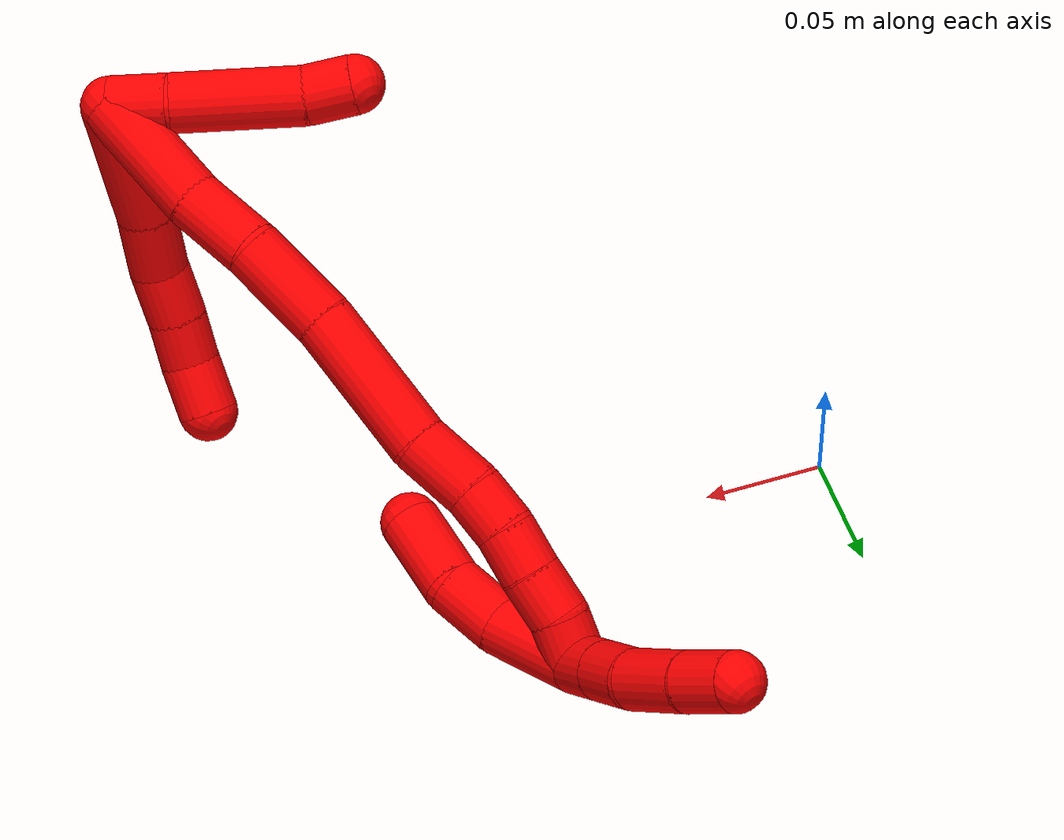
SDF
<sdf version="1.7">
 <world name="default">
  <model name="2">
   <static>0</static>
   <link name="2">
    <collision name="collision-cylinder-e_1_2_8">
     <pose>-0.016598 -0.020824 -0.007949 1.93544 -0.640064 -0.897084</pose>
     <geometry><cylinder><radius>0.0125</radius><length>0.05558</length></cylinder></geometry>
     <surface>
      <friction><ode><mu>1.16</mu><mu2>1.16</mu2><slip1>0</slip1><slip2>0</slip2></ode></friction>
      <contact><ode><kp>1e+06</kp><kd>1</kd><max_vel>0</max_vel><min_depth>0.001</min_depth></ode></contact>
     </surface>
    </collision>
    <visual name="visual-cylinder-e_1_2_8">
     <pose>-0.016598 -0.020824 -0.007949 1.93544 -0.640064 -0.897084</pose>
     <geometry><cylinder><radius>0.0125</radius><length>0.05558</length></cylinder></geometry>
     <material><ambient>1 0 0 1</ambient></material>
    </visual>
    <collision name="collision-cylinder-e_2_8_9">
     <pose>-0.040578 -0.052687 -0.019815 1.9118 -0.562389 -0.776484</pose>
     <geometry><cylinder><radius>0.0125</radius><length>0.027694</length></cylinder></geometry>
     <surface>
      <friction><ode><mu>1.16</mu><mu2>1.16</mu2><slip1>0</slip1><slip2>0</slip2></ode></friction>
      <contact><ode><kp>1e+06</kp><kd>1</kd><max_vel>0</max_vel><min_depth>0.001</min_depth></ode></contact>
     </surface>
    </collision>
    <visual name="visual-cylinder-e_2_8_9">
     <pose>-0.040578 -0.052687 -0.019815 1.9118 -0.562389 -0.776484</pose>
     <geometry><cylinder><radius>0.0125</radius><length>0.027694</length></cylinder></geometry>
     <material><ambient>1 0 0 1</ambient></material>
    </visual>
    <collision name="collision-cylinder-e_3_9_10">
     <pose>-0.053787 -0.071978 -0.029611 2.18982 -0.521852 -0.956009</pose>
     <geometry><cylinder><radius>0.0125</radius><length>0.023373</length></cylinder></geometry>
     <surface>
      <friction><ode><mu>1.16</mu><mu2>1.16</mu2><slip1>0</slip1><slip2>0</slip2></ode></friction>
      <contact><ode><kp>1e+06</kp><kd>1</kd><max_vel>0</max_vel><min_depth>0.001</min_depth></ode></contact>
     </surface>
    </collision>
    <visual name="visual-cylinder-e_3_9_10">
     <pose>-0.053787 -0.071978 -0.029611 2.18982 -0.521852 -0.956009</pose>
     <geometry><cylinder><radius>0.0125</radius><length>0.023373</length></cylinder></geometry>
     <material><ambient>1 0 0 1</ambient></material>
    </visual>
    <collision name="collision-cylinder-e_4_10_11">
     <pose>-0.064133 -0.087835 -0.040746 2.17555 -0.454776 -0.831022</pose>
     <geometry><cylinder><radius>0.0125</radius><length>0.020583</length></cylinder></geometry>
     <surface>
      <friction><ode><mu>1.16</mu><mu2>1.16</mu2><slip1>0</slip1><slip2>0</slip2></ode></friction>
      <contact><ode><kp>1e+06</kp><kd>1</kd><max_vel>0</max_vel><min_depth>0.001</min_depth></ode></contact>
     </surface>
    </collision>
    <visual name="visual-cylinder-e_4_10_11">
     <pose>-0.064133 -0.087835 -0.040746 2.17555 -0.454776 -0.831022</pose>
     <geometry><cylinder><radius>0.0125</radius><length>0.020583</length></cylinder></geometry>
     <material><ambient>1 0 0 1</ambient></material>
    </visual>
    <collision name="collision-cylinder-e_5_11_6">
     <pose>-0.072025 -0.102391 -0.054366 2.4482 -0.300578 -0.793798</pose>
     <geometry><cylinder><radius>0.0125</radius><length>0.022771</length></cylinder></geometry>
     <surface>
      <friction><ode><mu>1.16</mu><mu2>1.16</mu2><slip1>0</slip1><slip2>0</slip2></ode></friction>
      <contact><ode><kp>1e+06</kp><kd>1</kd><max_vel>0</max_vel><min_depth>0.001</min_depth></ode></contact>
     </surface>
    </collision>
    <visual name="visual-cylinder-e_5_11_6">
     <pose>-0.072025 -0.102391 -0.054366 2.4482 -0.300578 -0.793798</pose>
     <geometry><cylinder><radius>0.0125</radius><length>0.022771</length></cylinder></geometry>
     <material><ambient>1 0 0 1</ambient></material>
    </visual>
    <collision name="collision-cylinder-e_1_2_12">
     <pose>-0.006766 0.006841 -0.007532 -2.40423 -0.586861 1.32743</pose>
     <geometry><cylinder><radius>0.0125</radius><length>0.024438</length></cylinder></geometry>
     <surface>
      <friction><ode><mu>1.16</mu><mu2>1.16</mu2><slip1>0</slip1><slip2>0</slip2></ode></friction>
      <contact><ode><kp>1e+06</kp><kd>1</kd><max_vel>0</max_vel><min_depth>0.001</min_depth></ode></contact>
     </surface>
    </collision>
    <visual name="visual-cylinder-e_1_2_12">
     <pose>-0.006766 0.006841 -0.007532 -2.40423 -0.586861 1.32743</pose>
     <geometry><cylinder><radius>0.0125</radius><length>0.024438</length></cylinder></geometry>
     <material><ambient>1 0 0 1</ambient></material>
    </visual>
    <collision name="collision-cylinder-e_2_12_13">
     <pose>-0.032136 0.027722 -0.029718 -2.37758 -0.741924 1.5385</pose>
     <geometry><cylinder><radius>0.0125</radius><length>0.055062</length></cylinder></geometry>
     <surface>
      <friction><ode><mu>1.16</mu><mu2>1.16</mu2><slip1>0</slip1><slip2>0</slip2></ode></friction>
      <contact><ode><kp>1e+06</kp><kd>1</kd><max_vel>0</max_vel><min_depth>0.001</min_depth></ode></contact>
     </surface>
    </collision>
    <visual name="visual-cylinder-e_2_12_13">
     <pose>-0.032136 0.027722 -0.029718 -2.37758 -0.741924 1.5385</pose>
     <geometry><cylinder><radius>0.0125</radius><length>0.055062</length></cylinder></geometry>
     <material><ambient>1 0 0 1</ambient></material>
    </visual>
    <collision name="collision-cylinder-e_3_13_5">
     <pose>-0.056592 0.04863 -0.049234 -2.18681 -0.607873 1.09012</pose>
     <geometry><cylinder><radius>0.0125</radius><length>0.0205</length></cylinder></geometry>
     <surface>
      <friction><ode><mu>1.16</mu><mu2>1.16</mu2><slip1>0</slip1><slip2>0</slip2></ode></friction>
      <contact><ode><kp>1e+06</kp><kd>1</kd><max_vel>0</max_vel><min_depth>0.001</min_depth></ode></contact>
     </surface>
    </collision>
    <visual name="visual-cylinder-e_3_13_5">
     <pose>-0.056592 0.04863 -0.049234 -2.18681 -0.607873 1.09012</pose>
     <geometry><cylinder><radius>0.0125</radius><length>0.0205</length></cylinder></geometry>
     <material><ambient>1 0 0 1</ambient></material>
    </visual>
    <collision name="collision-cylinder-e_1_2_14">
     <pose>-0.006819 -0.003903 -0.02548 2.98958 -0.258611 -2.082</pose>
     <geometry><cylinder><radius>0.0125</radius><length>0.053327</length></cylinder></geometry>
     <surface>
      <friction><ode><mu>1.16</mu><mu2>1.16</mu2><slip1>0</slip1><slip2>0</slip2></ode></friction>
      <contact><ode><kp>1e+06</kp><kd>1</kd><max_vel>0</max_vel><min_depth>0.001</min_depth></ode></contact>
     </surface>
    </collision>
    <visual name="visual-cylinder-e_1_2_14">
     <pose>-0.006819 -0.003903 -0.02548 2.98958 -0.258611 -2.082</pose>
     <geometry><cylinder><radius>0.0125</radius><length>0.053327</length></cylinder></geometry>
     <material><ambient>1 0 0 1</ambient></material>
    </visual>
    <collision name="collision-cylinder-e_2_14_15">
     <pose>-0.017637 -0.007505 -0.067026 -3.1228 -0.243923 2.98859</pose>
     <geometry><cylinder><radius>0.0125</radius><length>0.033119</length></cylinder></geometry>
     <surface>
      <friction><ode><mu>1.16</mu><mu2>1.16</mu2><slip1>0</slip1><slip2>0</slip2></ode></friction>
      <contact><ode><kp>1e+06</kp><kd>1</kd><max_vel>0</max_vel><min_depth>0.001</min_depth></ode></contact>
     </surface>
    </collision>
    <visual name="visual-cylinder-e_2_14_15">
     <pose>-0.017637 -0.007505 -0.067026 -3.1228 -0.243923 2.98859</pose>
     <geometry><cylinder><radius>0.0125</radius><length>0.033119</length></cylinder></geometry>
     <material><ambient>1 0 0 1</ambient></material>
    </visual>
    <collision name="collision-cylinder-e_3_15_16">
     <pose>-0.029123 -0.010188 -0.102114 2.98594 -0.370818 -2.35354</pose>
     <geometry><cylinder><radius>0.0125</radius><length>0.041317</length></cylinder></geometry>
     <surface>
      <friction><ode><mu>1.16</mu><mu2>1.16</mu2><slip1>0</slip1><slip2>0</slip2></ode></friction>
      <contact><ode><kp>1e+06</kp><kd>1</kd><max_vel>0</max_vel><min_depth>0.001</min_depth></ode></contact>
     </surface>
    </collision>
    <visual name="visual-cylinder-e_3_15_16">
     <pose>-0.029123 -0.010188 -0.102114 2.98594 -0.370818 -2.35354</pose>
     <geometry><cylinder><radius>0.0125</radius><length>0.041317</length></cylinder></geometry>
     <material><ambient>1 0 0 1</ambient></material>
    </visual>
    <collision name="collision-cylinder-e_4_16_17">
     <pose>-0.045355 -0.020583 -0.150095 2.89109 -0.284642 -1.69973</pose>
     <geometry><cylinder><radius>0.0125</radius><length>0.062291</length></cylinder></geometry>
     <surface>
      <friction><ode><mu>1.16</mu><mu2>1.16</mu2><slip1>0</slip1><slip2>0</slip2></ode></friction>
      <contact><ode><kp>1e+06</kp><kd>1</kd><max_vel>0</max_vel><min_depth>0.001</min_depth></ode></contact>
     </surface>
    </collision>
    <visual name="visual-cylinder-e_4_16_17">
     <pose>-0.045355 -0.020583 -0.150095 2.89109 -0.284642 -1.69973</pose>
     <geometry><cylinder><radius>0.0125</radius><length>0.062291</length></cylinder></geometry>
     <material><ambient>1 0 0 1</ambient></material>
    </visual>
    <collision name="collision-cylinder-e_5_17_18">
     <pose>-0.059971 -0.029362 -0.192232 3.03809 -0.417099 -2.66151</pose>
     <geometry><cylinder><radius>0.0125</radius><length>0.028982</length></cylinder></geometry>
     <surface>
      <friction><ode><mu>1.16</mu><mu2>1.16</mu2><slip1>0</slip1><slip2>0</slip2></ode></friction>
      <contact><ode><kp>1e+06</kp><kd>1</kd><max_vel>0</max_vel><min_depth>0.001</min_depth></ode></contact>
     </surface>
    </collision>
    <visual name="visual-cylinder-e_5_17_18">
     <pose>-0.059971 -0.029362 -0.192232 3.03809 -0.417099 -2.66151</pose>
     <geometry><cylinder><radius>0.0125</radius><length>0.028982</length></cylinder></geometry>
     <material><ambient>1 0 0 1</ambient></material>
    </visual>
    <collision name="collision-cylinder-e_6_18_19">
     <pose>-0.069227 -0.033267 -0.214527 2.87027 -0.343561 -1.80833</pose>
     <geometry><cylinder><radius>0.0125</radius><length>0.020102</length></cylinder></geometry>
     <surface>
      <friction><ode><mu>1.16</mu><mu2>1.16</mu2><slip1>0</slip1><slip2>0</slip2></ode></friction>
      <contact><ode><kp>1e+06</kp><kd>1</kd><max_vel>0</max_vel><min_depth>0.001</min_depth></ode></contact>
     </surface>
    </collision>
    <visual name="visual-cylinder-e_6_18_19">
     <pose>-0.069227 -0.033267 -0.214527 2.87027 -0.343561 -1.80833</pose>
     <geometry><cylinder><radius>0.0125</radius><length>0.020102</length></cylinder></geometry>
     <material><ambient>1 0 0 1</ambient></material>
    </visual>
    <collision name="collision-cylinder-e_7_19_20">
     <pose>-0.075813 -0.04002 -0.23219 2.68323 -0.323994 -1.22222</pose>
     <geometry><cylinder><radius>0.0125</radius><length>0.020105</length></cylinder></geometry>
     <surface>
      <friction><ode><mu>1.16</mu><mu2>1.16</mu2><slip1>0</slip1><slip2>0</slip2></ode></friction>
      <contact><ode><kp>1e+06</kp><kd>1</kd><max_vel>0</max_vel><min_depth>0.001</min_depth></ode></contact>
     </surface>
    </collision>
    <visual name="visual-cylinder-e_7_19_20">
     <pose>-0.075813 -0.04002 -0.23219 2.68323 -0.323994 -1.22222</pose>
     <geometry><cylinder><radius>0.0125</radius><length>0.020105</length></cylinder></geometry>
     <material><ambient>1 0 0 1</ambient></material>
    </visual>
    <collision name="collision-cylinder-e_8_20_21">
     <pose>-0.082991 -0.048243 -0.2492 2.69945 -0.401639 -1.47196</pose>
     <geometry><cylinder><radius>0.0125</radius><length>0.020349</length></cylinder></geometry>
     <surface>
      <friction><ode><mu>1.16</mu><mu2>1.16</mu2><slip1>0</slip1><slip2>0</slip2></ode></friction>
      <contact><ode><kp>1e+06</kp><kd>1</kd><max_vel>0</max_vel><min_depth>0.001</min_depth></ode></contact>
     </surface>
    </collision>
    <visual name="visual-cylinder-e_8_20_21">
     <pose>-0.082991 -0.048243 -0.2492 2.69945 -0.401639 -1.47196</pose>
     <geometry><cylinder><radius>0.0125</radius><length>0.020349</length></cylinder></geometry>
     <material><ambient>1 0 0 1</ambient></material>
    </visual>
    <collision name="collision-cylinder-e_9_21_1">
     <pose>-0.09068 -0.058538 -0.264793 2.41877 -0.372258 -0.924336</pose>
     <geometry><cylinder><radius>0.0125</radius><length>0.020407</length></cylinder></geometry>
     <surface>
      <friction><ode><mu>1.16</mu><mu2>1.16</mu2><slip1>0</slip1><slip2>0</slip2></ode></friction>
      <contact><ode><kp>1e+06</kp><kd>1</kd><max_vel>0</max_vel><min_depth>0.001</min_depth></ode></contact>
     </surface>
    </collision>
    <visual name="visual-cylinder-e_9_21_1">
     <pose>-0.09068 -0.058538 -0.264793 2.41877 -0.372258 -0.924336</pose>
     <geometry><cylinder><radius>0.0125</radius><length>0.020407</length></cylinder></geometry>
     <material><ambient>1 0 0 1</ambient></material>
    </visual>
    <collision name="collision-cylinder-e_1_1_22">
     <pose>-0.091044 -0.059081 -0.280469 -2.54991 0.314242 -0.958726</pose>
     <geometry><cylinder><radius>0.0125</radius><length>0.021657</length></cylinder></geometry>
     <surface>
      <friction><ode><mu>1.16</mu><mu2>1.16</mu2><slip1>0</slip1><slip2>0</slip2></ode></friction>
      <contact><ode><kp>1e+06</kp><kd>1</kd><max_vel>0</max_vel><min_depth>0.001</min_depth></ode></contact>
     </surface>
    </collision>
    <visual name="visual-cylinder-e_1_1_22">
     <pose>-0.091044 -0.059081 -0.280469 -2.54991 0.314242 -0.958726</pose>
     <geometry><cylinder><radius>0.0125</radius><length>0.021657</length></cylinder></geometry>
     <material><ambient>1 0 0 1</ambient></material>
    </visual>
    <collision name="collision-cylinder-e_2_22_23">
     <pose>-0.084057 -0.047164 -0.29817 -2.54822 0.318438 -0.96731</pose>
     <geometry><cylinder><radius>0.0125</radius><length>0.023253</length></cylinder></geometry>
     <surface>
      <friction><ode><mu>1.16</mu><mu2>1.16</mu2><slip1>0</slip1><slip2>0</slip2></ode></friction>
      <contact><ode><kp>1e+06</kp><kd>1</kd><max_vel>0</max_vel><min_depth>0.001</min_depth></ode></contact>
     </surface>
    </collision>
    <visual name="visual-cylinder-e_2_22_23">
     <pose>-0.084057 -0.047164 -0.29817 -2.54822 0.318438 -0.96731</pose>
     <geometry><cylinder><radius>0.0125</radius><length>0.023253</length></cylinder></geometry>
     <material><ambient>1 0 0 1</ambient></material>
    </visual>
    <collision name="collision-cylinder-e_3_23_24">
     <pose>-0.07868 -0.031102 -0.319022 -2.43982 0.112928 -0.306425</pose>
     <geometry><cylinder><radius>0.0125</radius><length>0.030829</length></cylinder></geometry>
     <surface>
      <friction><ode><mu>1.16</mu><mu2>1.16</mu2><slip1>0</slip1><slip2>0</slip2></ode></friction>
      <contact><ode><kp>1e+06</kp><kd>1</kd><max_vel>0</max_vel><min_depth>0.001</min_depth></ode></contact>
     </surface>
    </collision>
    <visual name="visual-cylinder-e_3_23_24">
     <pose>-0.07868 -0.031102 -0.319022 -2.43982 0.112928 -0.306425</pose>
     <geometry><cylinder><radius>0.0125</radius><length>0.030829</length></cylinder></geometry>
     <material><ambient>1 0 0 1</ambient></material>
    </visual>
    <collision name="collision-cylinder-e_4_24_4">
     <pose>-0.076606 -0.01307 -0.339703 -2.40519 0.027783 -0.071989</pose>
     <geometry><cylinder><radius>0.0125</radius><length>0.024262</length></cylinder></geometry>
     <surface>
      <friction><ode><mu>1.16</mu><mu2>1.16</mu2><slip1>0</slip1><slip2>0</slip2></ode></friction>
      <contact><ode><kp>1e+06</kp><kd>1</kd><max_vel>0</max_vel><min_depth>0.001</min_depth></ode></contact>
     </surface>
    </collision>
    <visual name="visual-cylinder-e_4_24_4">
     <pose>-0.076606 -0.01307 -0.339703 -2.40519 0.027783 -0.071989</pose>
     <geometry><cylinder><radius>0.0125</radius><length>0.024262</length></cylinder></geometry>
     <material><ambient>1 0 0 1</ambient></material>
    </visual>
    <collision name="collision-cylinder-e_1_1_25">
     <pose>-0.09209 -0.071155 -0.253216 0.326318 0.116015 0.01912</pose>
     <geometry><cylinder><radius>0.0125</radius><length>0.039761</length></cylinder></geometry>
     <surface>
      <friction><ode><mu>1.16</mu><mu2>1.16</mu2><slip1>0</slip1><slip2>0</slip2></ode></friction>
      <contact><ode><kp>1e+06</kp><kd>1</kd><max_vel>0</max_vel><min_depth>0.001</min_depth></ode></contact>
     </surface>
    </collision>
    <visual name="visual-cylinder-e_1_1_25">
     <pose>-0.09209 -0.071155 -0.253216 0.326318 0.116015 0.01912</pose>
     <geometry><cylinder><radius>0.0125</radius><length>0.039761</length></cylinder></geometry>
     <material><ambient>1 0 0 1</ambient></material>
    </visual>
    <collision name="collision-cylinder-e_2_25_26">
     <pose>-0.086267 -0.077643 -0.221828 0.012453 0.270825 0.001697</pose>
     <geometry><cylinder><radius>0.0125</radius><length>0.026329</length></cylinder></geometry>
     <surface>
      <friction><ode><mu>1.16</mu><mu2>1.16</mu2><slip1>0</slip1><slip2>0</slip2></ode></friction>
      <contact><ode><kp>1e+06</kp><kd>1</kd><max_vel>0</max_vel><min_depth>0.001</min_depth></ode></contact>
     </surface>
    </collision>
    <visual name="visual-cylinder-e_2_25_26">
     <pose>-0.086267 -0.077643 -0.221828 0.012453 0.270825 0.001697</pose>
     <geometry><cylinder><radius>0.0125</radius><length>0.026329</length></cylinder></geometry>
     <material><ambient>1 0 0 1</ambient></material>
    </visual>
    <collision name="collision-cylinder-e_3_26_3">
     <pose>-0.082997 -0.075914 -0.192297 -0.111539 -0.014889 0.000831</pose>
     <geometry><cylinder><radius>0.0125</radius><length>0.03391</length></cylinder></geometry>
     <surface>
      <friction><ode><mu>1.16</mu><mu2>1.16</mu2><slip1>0</slip1><slip2>0</slip2></ode></friction>
      <contact><ode><kp>1e+06</kp><kd>1</kd><max_vel>0</max_vel><min_depth>0.001</min_depth></ode></contact>
     </surface>
    </collision>
    <visual name="visual-cylinder-e_3_26_3">
     <pose>-0.082997 -0.075914 -0.192297 -0.111539 -0.014889 0.000831</pose>
     <geometry><cylinder><radius>0.0125</radius><length>0.03391</length></cylinder></geometry>
     <material><ambient>1 0 0 1</ambient></material>
    </visual>
    <collision name="collision-sphere-3">
     <pose>-0.08325 -0.074027 -0.175449 0 -0 0</pose>
     <geometry><sphere><radius>0.0125</radius></sphere></geometry>
     <surface>
      <friction><ode><mu>1.16</mu><mu2>1.16</mu2><slip1>0</slip1><slip2>0</slip2></ode></friction>
      <contact><ode><kp>1e+06</kp><kd>1</kd><max_vel>0</max_vel><min_depth>0.001</min_depth></ode></contact>
     </surface>
    </collision>
    <visual name="visual-sphere-3">
     <pose>-0.08325 -0.074027 -0.175449 0 -0 0</pose>
     <geometry><sphere><radius>0.0125</radius></sphere></geometry>
     <material><ambient>1 0 0 1</ambient></material>
    </visual>
    <collision name="collision-sphere-26">
     <pose>-0.082745 -0.077801 -0.209145 0 -0 0</pose>
     <geometry><sphere><radius>0.0125</radius></sphere></geometry>
     <surface>
      <friction><ode><mu>1.16</mu><mu2>1.16</mu2><slip1>0</slip1><slip2>0</slip2></ode></friction>
      <contact><ode><kp>1e+06</kp><kd>1</kd><max_vel>0</max_vel><min_depth>0.001</min_depth></ode></contact>
     </surface>
    </collision>
    <visual name="visual-sphere-26">
     <pose>-0.082745 -0.077801 -0.209145 0 -0 0</pose>
     <geometry><sphere><radius>0.0125</radius></sphere></geometry>
     <material><ambient>1 0 0 1</ambient></material>
    </visual>
    <collision name="collision-sphere-25">
     <pose>-0.089789 -0.077485 -0.234512 0 -0 0</pose>
     <geometry><sphere><radius>0.0125</radius></sphere></geometry>
     <surface>
      <friction><ode><mu>1.16</mu><mu2>1.16</mu2><slip1>0</slip1><slip2>0</slip2></ode></friction>
      <contact><ode><kp>1e+06</kp><kd>1</kd><max_vel>0</max_vel><min_depth>0.001</min_depth></ode></contact>
     </surface>
    </collision>
    <visual name="visual-sphere-25">
     <pose>-0.089789 -0.077485 -0.234512 0 -0 0</pose>
     <geometry><sphere><radius>0.0125</radius></sphere></geometry>
     <material><ambient>1 0 0 1</ambient></material>
    </visual>
    <collision name="collision-sphere-4">
     <pose>-0.076269 -0.004925 -0.348687 0 -0 0</pose>
     <geometry><sphere><radius>0.0125</radius></sphere></geometry>
     <surface>
      <friction><ode><mu>1.16</mu><mu2>1.16</mu2><slip1>0</slip1><slip2>0</slip2></ode></friction>
      <contact><ode><kp>1e+06</kp><kd>1</kd><max_vel>0</max_vel><min_depth>0.001</min_depth></ode></contact>
     </surface>
    </collision>
    <visual name="visual-sphere-4">
     <pose>-0.076269 -0.004925 -0.348687 0 -0 0</pose>
     <geometry><sphere><radius>0.0125</radius></sphere></geometry>
     <material><ambient>1 0 0 1</ambient></material>
    </visual>
    <collision name="collision-sphere-24">
     <pose>-0.076943 -0.021214 -0.330719 0 -0 0</pose>
     <geometry><sphere><radius>0.0125</radius></sphere></geometry>
     <surface>
      <friction><ode><mu>1.16</mu><mu2>1.16</mu2><slip1>0</slip1><slip2>0</slip2></ode></friction>
      <contact><ode><kp>1e+06</kp><kd>1</kd><max_vel>0</max_vel><min_depth>0.001</min_depth></ode></contact>
     </surface>
    </collision>
    <visual name="visual-sphere-24">
     <pose>-0.076943 -0.021214 -0.330719 0 -0 0</pose>
     <geometry><sphere><radius>0.0125</radius></sphere></geometry>
     <material><ambient>1 0 0 1</ambient></material>
    </visual>
    <collision name="collision-sphere-23">
     <pose>-0.080417 -0.040989 -0.307325 0 -0 0</pose>
     <geometry><sphere><radius>0.0125</radius></sphere></geometry>
     <surface>
      <friction><ode><mu>1.16</mu><mu2>1.16</mu2><slip1>0</slip1><slip2>0</slip2></ode></friction>
      <contact><ode><kp>1e+06</kp><kd>1</kd><max_vel>0</max_vel><min_depth>0.001</min_depth></ode></contact>
     </surface>
    </collision>
    <visual name="visual-sphere-23">
     <pose>-0.080417 -0.040989 -0.307325 0 -0 0</pose>
     <geometry><sphere><radius>0.0125</radius></sphere></geometry>
     <material><ambient>1 0 0 1</ambient></material>
    </visual>
    <collision name="collision-sphere-22">
     <pose>-0.087697 -0.053338 -0.289016 0 -0 0</pose>
     <geometry><sphere><radius>0.0125</radius></sphere></geometry>
     <surface>
      <friction><ode><mu>1.16</mu><mu2>1.16</mu2><slip1>0</slip1><slip2>0</slip2></ode></friction>
      <contact><ode><kp>1e+06</kp><kd>1</kd><max_vel>0</max_vel><min_depth>0.001</min_depth></ode></contact>
     </surface>
    </collision>
    <visual name="visual-sphere-22">
     <pose>-0.087697 -0.053338 -0.289016 0 -0 0</pose>
     <geometry><sphere><radius>0.0125</radius></sphere></geometry>
     <material><ambient>1 0 0 1</ambient></material>
    </visual>
    <collision name="collision-sphere-1">
     <pose>-0.094391 -0.064825 -0.271921 0 -0 0</pose>
     <geometry><sphere><radius>0.0125</radius></sphere></geometry>
     <surface>
      <friction><ode><mu>1.16</mu><mu2>1.16</mu2><slip1>0</slip1><slip2>0</slip2></ode></friction>
      <contact><ode><kp>1e+06</kp><kd>1</kd><max_vel>0</max_vel><min_depth>0.001</min_depth></ode></contact>
     </surface>
    </collision>
    <visual name="visual-sphere-1">
     <pose>-0.094391 -0.064825 -0.271921 0 -0 0</pose>
     <geometry><sphere><radius>0.0125</radius></sphere></geometry>
     <material><ambient>1 0 0 1</ambient></material>
    </visual>
    <collision name="collision-sphere-21">
     <pose>-0.086969 -0.05225 -0.257665 0 -0 0</pose>
     <geometry><sphere><radius>0.0125</radius></sphere></geometry>
     <surface>
      <friction><ode><mu>1.16</mu><mu2>1.16</mu2><slip1>0</slip1><slip2>0</slip2></ode></friction>
      <contact><ode><kp>1e+06</kp><kd>1</kd><max_vel>0</max_vel><min_depth>0.001</min_depth></ode></contact>
     </surface>
    </collision>
    <visual name="visual-sphere-21">
     <pose>-0.086969 -0.05225 -0.257665 0 -0 0</pose>
     <geometry><sphere><radius>0.0125</radius></sphere></geometry>
     <material><ambient>1 0 0 1</ambient></material>
    </visual>
    <collision name="collision-sphere-6">
     <pose>-0.075396 -0.109341 -0.06273 0 -0 0</pose>
     <geometry><sphere><radius>0.0125</radius></sphere></geometry>
     <surface>
      <friction><ode><mu>1.16</mu><mu2>1.16</mu2><slip1>0</slip1><slip2>0</slip2></ode></friction>
      <contact><ode><kp>1e+06</kp><kd>1</kd><max_vel>0</max_vel><min_depth>0.001</min_depth></ode></contact>
     </surface>
    </collision>
    <visual name="visual-sphere-6">
     <pose>-0.075396 -0.109341 -0.06273 0 -0 0</pose>
     <geometry><sphere><radius>0.0125</radius></sphere></geometry>
     <material><ambient>1 0 0 1</ambient></material>
    </visual>
    <collision name="collision-sphere-11">
     <pose>-0.068654 -0.09544 -0.046002 0 -0 0</pose>
     <geometry><sphere><radius>0.0125</radius></sphere></geometry>
     <surface>
      <friction><ode><mu>1.16</mu><mu2>1.16</mu2><slip1>0</slip1><slip2>0</slip2></ode></friction>
      <contact><ode><kp>1e+06</kp><kd>1</kd><max_vel>0</max_vel><min_depth>0.001</min_depth></ode></contact>
     </surface>
    </collision>
    <visual name="visual-sphere-11">
     <pose>-0.068654 -0.09544 -0.046002 0 -0 0</pose>
     <geometry><sphere><radius>0.0125</radius></sphere></geometry>
     <material><ambient>1 0 0 1</ambient></material>
    </visual>
    <collision name="collision-sphere-10">
     <pose>-0.059613 -0.080229 -0.035489 0 -0 0</pose>
     <geometry><sphere><radius>0.0125</radius></sphere></geometry>
     <surface>
      <friction><ode><mu>1.16</mu><mu2>1.16</mu2><slip1>0</slip1><slip2>0</slip2></ode></friction>
      <contact><ode><kp>1e+06</kp><kd>1</kd><max_vel>0</max_vel><min_depth>0.001</min_depth></ode></contact>
     </surface>
    </collision>
    <visual name="visual-sphere-10">
     <pose>-0.059613 -0.080229 -0.035489 0 -0 0</pose>
     <geometry><sphere><radius>0.0125</radius></sphere></geometry>
     <material><ambient>1 0 0 1</ambient></material>
    </visual>
    <collision name="collision-sphere-9">
     <pose>-0.047962 -0.063727 -0.023733 0 -0 0</pose>
     <geometry><sphere><radius>0.0125</radius></sphere></geometry>
     <surface>
      <friction><ode><mu>1.16</mu><mu2>1.16</mu2><slip1>0</slip1><slip2>0</slip2></ode></friction>
      <contact><ode><kp>1e+06</kp><kd>1</kd><max_vel>0</max_vel><min_depth>0.001</min_depth></ode></contact>
     </surface>
    </collision>
    <visual name="visual-sphere-9">
     <pose>-0.047962 -0.063727 -0.023733 0 -0 0</pose>
     <geometry><sphere><radius>0.0125</radius></sphere></geometry>
     <material><ambient>1 0 0 1</ambient></material>
    </visual>
    <collision name="collision-sphere-2">
     <geometry><sphere><radius>0.0125</radius></sphere></geometry>
     <surface>
      <friction><ode><mu>1.16</mu><mu2>1.16</mu2><slip1>0</slip1><slip2>0</slip2></ode></friction>
      <contact><ode><kp>1e+06</kp><kd>1</kd><max_vel>0</max_vel><min_depth>0.001</min_depth></ode></contact>
     </surface>
    </collision>
    <visual name="visual-sphere-2">
     <geometry><sphere><radius>0.0125</radius></sphere></geometry>
     <material><ambient>1 0 0 1</ambient></material>
    </visual>
    <collision name="collision-sphere-19">
     <pose>-0.072613 -0.035803 -0.223644 0 -0 0</pose>
     <geometry><sphere><radius>0.0125</radius></sphere></geometry>
     <surface>
      <friction><ode><mu>1.16</mu><mu2>1.16</mu2><slip1>0</slip1><slip2>0</slip2></ode></friction>
      <contact><ode><kp>1e+06</kp><kd>1</kd><max_vel>0</max_vel><min_depth>0.001</min_depth></ode></contact>
     </surface>
    </collision>
    <visual name="visual-sphere-19">
     <pose>-0.072613 -0.035803 -0.223644 0 -0 0</pose>
     <geometry><sphere><radius>0.0125</radius></sphere></geometry>
     <material><ambient>1 0 0 1</ambient></material>
    </visual>
    <collision name="collision-sphere-8">
     <pose>-0.033195 -0.041648 -0.015897 0 -0 0</pose>
     <geometry><sphere><radius>0.0125</radius></sphere></geometry>
     <surface>
      <friction><ode><mu>1.16</mu><mu2>1.16</mu2><slip1>0</slip1><slip2>0</slip2></ode></friction>
      <contact><ode><kp>1e+06</kp><kd>1</kd><max_vel>0</max_vel><min_depth>0.001</min_depth></ode></contact>
     </surface>
    </collision>
    <visual name="visual-sphere-8">
     <pose>-0.033195 -0.041648 -0.015897 0 -0 0</pose>
     <geometry><sphere><radius>0.0125</radius></sphere></geometry>
     <material><ambient>1 0 0 1</ambient></material>
    </visual>
    <collision name="collision-sphere-12">
     <pose>-0.013533 0.013681 -0.015063 0 -0 0</pose>
     <geometry><sphere><radius>0.0125</radius></sphere></geometry>
     <surface>
      <friction><ode><mu>1.16</mu><mu2>1.16</mu2><slip1>0</slip1><slip2>0</slip2></ode></friction>
      <contact><ode><kp>1e+06</kp><kd>1</kd><max_vel>0</max_vel><min_depth>0.001</min_depth></ode></contact>
     </surface>
    </collision>
    <visual name="visual-sphere-12">
     <pose>-0.013533 0.013681 -0.015063 0 -0 0</pose>
     <geometry><sphere><radius>0.0125</radius></sphere></geometry>
     <material><ambient>1 0 0 1</ambient></material>
    </visual>
    <collision name="collision-sphere-13">
     <pose>-0.050739 0.041763 -0.044372 0 -0 0</pose>
     <geometry><sphere><radius>0.0125</radius></sphere></geometry>
     <surface>
      <friction><ode><mu>1.16</mu><mu2>1.16</mu2><slip1>0</slip1><slip2>0</slip2></ode></friction>
      <contact><ode><kp>1e+06</kp><kd>1</kd><max_vel>0</max_vel><min_depth>0.001</min_depth></ode></contact>
     </surface>
    </collision>
    <visual name="visual-sphere-13">
     <pose>-0.050739 0.041763 -0.044372 0 -0 0</pose>
     <geometry><sphere><radius>0.0125</radius></sphere></geometry>
     <material><ambient>1 0 0 1</ambient></material>
    </visual>
    <collision name="collision-sphere-5">
     <pose>-0.062446 0.055497 -0.054095 0 -0 0</pose>
     <geometry><sphere><radius>0.0125</radius></sphere></geometry>
     <surface>
      <friction><ode><mu>1.16</mu><mu2>1.16</mu2><slip1>0</slip1><slip2>0</slip2></ode></friction>
      <contact><ode><kp>1e+06</kp><kd>1</kd><max_vel>0</max_vel><min_depth>0.001</min_depth></ode></contact>
     </surface>
    </collision>
    <visual name="visual-sphere-5">
     <pose>-0.062446 0.055497 -0.054095 0 -0 0</pose>
     <geometry><sphere><radius>0.0125</radius></sphere></geometry>
     <material><ambient>1 0 0 1</ambient></material>
    </visual>
    <collision name="collision-sphere-14">
     <pose>-0.013638 -0.007807 -0.05096 0 -0 0</pose>
     <geometry><sphere><radius>0.0125</radius></sphere></geometry>
     <surface>
      <friction><ode><mu>1.16</mu><mu2>1.16</mu2><slip1>0</slip1><slip2>0</slip2></ode></friction>
      <contact><ode><kp>1e+06</kp><kd>1</kd><max_vel>0</max_vel><min_depth>0.001</min_depth></ode></contact>
     </surface>
    </collision>
    <visual name="visual-sphere-14">
     <pose>-0.013638 -0.007807 -0.05096 0 -0 0</pose>
     <geometry><sphere><radius>0.0125</radius></sphere></geometry>
     <material><ambient>1 0 0 1</ambient></material>
    </visual>
    <collision name="collision-sphere-15">
     <pose>-0.021636 -0.007203 -0.083092 0 -0 0</pose>
     <geometry><sphere><radius>0.0125</radius></sphere></geometry>
     <surface>
      <friction><ode><mu>1.16</mu><mu2>1.16</mu2><slip1>0</slip1><slip2>0</slip2></ode></friction>
      <contact><ode><kp>1e+06</kp><kd>1</kd><max_vel>0</max_vel><min_depth>0.001</min_depth></ode></contact>
     </surface>
    </collision>
    <visual name="visual-sphere-15">
     <pose>-0.021636 -0.007203 -0.083092 0 -0 0</pose>
     <geometry><sphere><radius>0.0125</radius></sphere></geometry>
     <material><ambient>1 0 0 1</ambient></material>
    </visual>
    <collision name="collision-sphere-16">
     <pose>-0.036609 -0.013173 -0.121136 0 -0 0</pose>
     <geometry><sphere><radius>0.0125</radius></sphere></geometry>
     <surface>
      <friction><ode><mu>1.16</mu><mu2>1.16</mu2><slip1>0</slip1><slip2>0</slip2></ode></friction>
      <contact><ode><kp>1e+06</kp><kd>1</kd><max_vel>0</max_vel><min_depth>0.001</min_depth></ode></contact>
     </surface>
    </collision>
    <visual name="visual-sphere-16">
     <pose>-0.036609 -0.013173 -0.121136 0 -0 0</pose>
     <geometry><sphere><radius>0.0125</radius></sphere></geometry>
     <material><ambient>1 0 0 1</ambient></material>
    </visual>
    <collision name="collision-sphere-17">
     <pose>-0.054101 -0.027993 -0.179054 0 -0 0</pose>
     <geometry><sphere><radius>0.0125</radius></sphere></geometry>
     <surface>
      <friction><ode><mu>1.16</mu><mu2>1.16</mu2><slip1>0</slip1><slip2>0</slip2></ode></friction>
      <contact><ode><kp>1e+06</kp><kd>1</kd><max_vel>0</max_vel><min_depth>0.001</min_depth></ode></contact>
     </surface>
    </collision>
    <visual name="visual-sphere-17">
     <pose>-0.054101 -0.027993 -0.179054 0 -0 0</pose>
     <geometry><sphere><radius>0.0125</radius></sphere></geometry>
     <material><ambient>1 0 0 1</ambient></material>
    </visual>
    <collision name="collision-sphere-18">
     <pose>-0.065842 -0.03073 -0.20541 0 -0 0</pose>
     <geometry><sphere><radius>0.0125</radius></sphere></geometry>
     <surface>
      <friction><ode><mu>1.16</mu><mu2>1.16</mu2><slip1>0</slip1><slip2>0</slip2></ode></friction>
      <contact><ode><kp>1e+06</kp><kd>1</kd><max_vel>0</max_vel><min_depth>0.001</min_depth></ode></contact>
     </surface>
    </collision>
    <visual name="visual-sphere-18">
     <pose>-0.065842 -0.03073 -0.20541 0 -0 0</pose>
     <geometry><sphere><radius>0.0125</radius></sphere></geometry>
     <material><ambient>1 0 0 1</ambient></material>
    </visual>
    <collision name="collision-sphere-20">
     <pose>-0.079014 -0.044236 -0.240736 0 -0 0</pose>
     <geometry><sphere><radius>0.0125</radius></sphere></geometry>
     <surface>
      <friction><ode><mu>1.16</mu><mu2>1.16</mu2><slip1>0</slip1><slip2>0</slip2></ode></friction>
      <contact><ode><kp>1e+06</kp><kd>1</kd><max_vel>0</max_vel><min_depth>0.001</min_depth></ode></contact>
     </surface>
    </collision>
    <visual name="visual-sphere-20">
     <pose>-0.079014 -0.044236 -0.240736 0 -0 0</pose>
     <geometry><sphere><radius>0.0125</radius></sphere></geometry>
     <material><ambient>1 0 0 1</ambient></material>
    </visual>
    <inertial>
     <pose>-0.052648 -0.031344 -0.136368 0 -0 0</pose>
     <mass>0.75</mass>
     <inertia><ixx>-5e-05</ixx><ixy>0</ixy><ixz>0</ixz><iyy>-1.2e-05</iyy><iyz>0</iyz><izz>2.7e-05</izz></inertia>
    </inertial>
   </link>
   <pose>0.252066 -0.162312 0.144338 1.57914 -0.603253 0.267818</pose>
  </model>
 </world>
</sdf>
